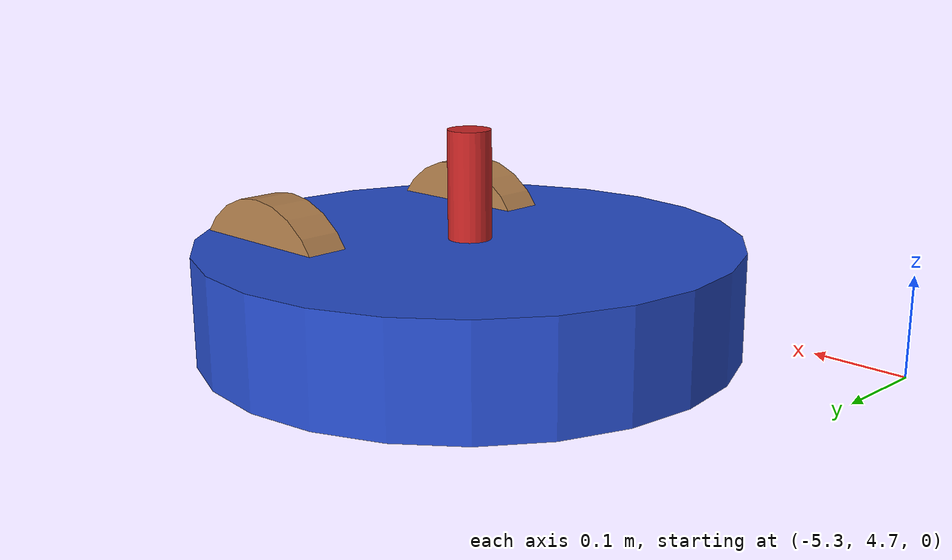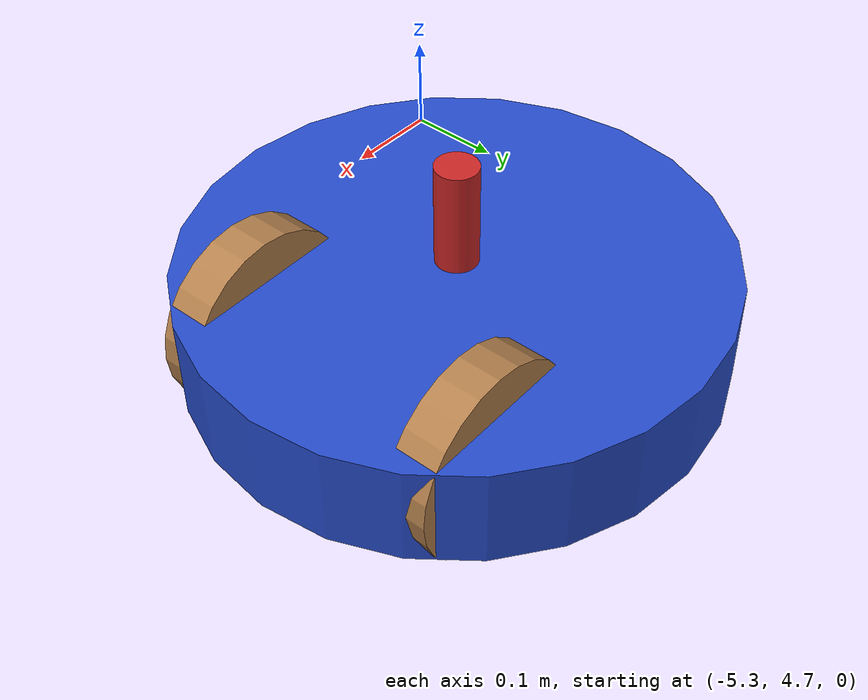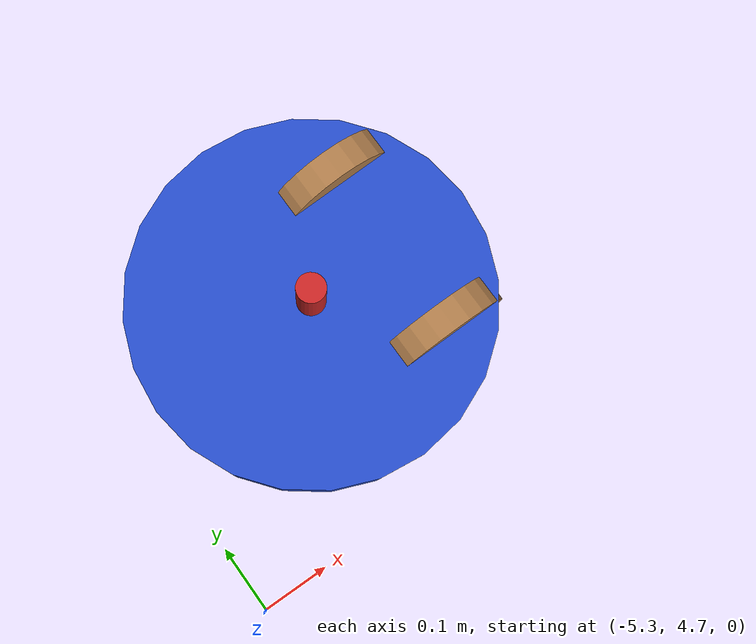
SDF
<sdf version="1.7">
 <world name="default">
  <model name="logger0">
   <link name="logger-chassis">
    <inertial>
     <pose>0.005952 0 -0.002381 0 -0 0</pose>
     <mass>2.1</mass>
     <inertia>
      <ixx>0.0332188</ixx>
      <ixy>0</ixy>
      <ixz>0.000595238</ixz>
      <iyy>0.0347069</iyy>
      <iyz>0</iyz>
      <izz>0.0640521</izz>
     </inertia>
    </inertial>
    <collision name="logger-chassis_collision">
     <geometry><cylinder><length>0.1</length><radius>0.25</radius></cylinder></geometry>
     <surface><friction><ode><mu>0.5</mu><mu2>0.5</mu2></ode></friction></surface>
    </collision>
    <collision name="logger-chassis_fixed_joint_lump__logger-caster_collision_1">
     <pose>0.125 0 -0.05 0 -0 0</pose>
     <geometry><sphere><radius>0.04</radius></sphere></geometry>
     <surface><friction><ode><mu>0</mu><mu2>0</mu2></ode></friction></surface>
    </collision>
    <visual name="logger-chassis_visual">
     <geometry><cylinder><length>0.1</length><radius>0.25</radius></cylinder></geometry>
     <material>
      <script><name>Gazebo/Blue</name><uri>file://media/materials/scripts/gazebo.material</uri></script>
     </material>
    </visual>
    <visual name="logger-chassis_fixed_joint_lump__logger-caster_visual_1">
     <pose>0.125 0 -0.05 0 -0 0</pose>
     <geometry><sphere><radius>0.04</radius></sphere></geometry>
     <material>
      <script><name>Gazebo/Grey</name><uri>file://media/materials/scripts/gazebo.material</uri></script>
     </material>
    </visual>
   </link>
   <joint name="logger-chassis2hat" type="revolute">
    <pose relative_to="logger-chassis">0 0 0.1 0 -0 0</pose>
    <parent>logger-chassis</parent>
    <child>logger-hat</child>
    <axis>
     <xyz>0 0 1</xyz>
     <limit><lower>-1e+16</lower><upper>1e+16</upper></limit>
     <dynamics><spring_reference>0</spring_reference><spring_stiffness>0</spring_stiffness></dynamics>
    </axis>
   </joint>
   <link name="logger-hat">
    <pose relative_to="logger-chassis2hat">0 0 0 0 -0 0</pose>
    <inertial>
     <pose>0 0 0.04 0 -0 0</pose>
     <mass>0.5</mass>
     <inertia>
      <ixx>0.000466667</ixx>
      <ixy>0</ixy>
      <ixz>0</ixz>
      <iyy>0.000466667</iyy>
      <iyz>0</iyz>
      <izz>0.0001</izz>
     </inertia>
    </inertial>
    <collision name="logger-hat_collision">
     <geometry><cylinder><length>0.1</length><radius>0.02</radius></cylinder></geometry>
     <surface><friction><ode><mu>0</mu><mu2>0</mu2></ode></friction></surface>
    </collision>
    <visual name="logger-hat_visual">
     <geometry><cylinder><length>0.1</length><radius>0.02</radius></cylinder></geometry>
     <material>
      <script><name>Gazebo/Red</name><uri>file://media/materials/scripts/gazebo.material</uri></script>
     </material>
    </visual>
   </link>
   <joint name="logger-chassis2left_wheel" type="revolute">
    <pose relative_to="logger-chassis">-0.125 -0.125 0 0 -0 0</pose>
    <parent>logger-chassis</parent>
    <child>logger-left_wheel</child>
    <axis>
     <xyz>0 1 0</xyz>
     <limit><lower>-1e+16</lower><upper>1e+16</upper></limit>
     <dynamics><spring_reference>0</spring_reference><spring_stiffness>0</spring_stiffness></dynamics>
    </axis>
   </joint>
   <link name="logger-left_wheel">
    <pose relative_to="logger-chassis2left_wheel">0 0 0 0 -0 0</pose>
    <inertial>
     <pose>0 0 0 1.5708 -0 0</pose>
     <mass>0.5</mass>
     <inertia>
      <ixx>0.00107917</ixx>
      <ixy>0</ixy>
      <ixz>0</ixz>
      <iyy>0.00107917</iyy>
      <iyz>0</iyz>
      <izz>0.002025</izz>
     </inertia>
    </inertial>
    <collision name="logger-left_wheel_collision">
     <pose>0 0 0 1.5708 -0 0</pose>
     <geometry><cylinder><length>0.04</length><radius>0.09</radius></cylinder></geometry>
     <surface><friction><ode><mu>0.99</mu><mu2>0.99</mu2></ode></friction></surface>
    </collision>
    <visual name="logger-left_wheel_visual">
     <pose>0 0 0 1.5708 -0 0</pose>
     <geometry><cylinder><length>0.04</length><radius>0.09</radius></cylinder></geometry>
     <material>
      <script><name>Gazebo/Wood</name><uri>file://media/materials/scripts/gazebo.material</uri></script>
     </material>
    </visual>
   </link>
   <joint name="logger-chassis2right_wheel" type="revolute">
    <pose relative_to="logger-chassis">-0.125 0.125 0 0 -0 0</pose>
    <parent>logger-chassis</parent>
    <child>logger-right_wheel</child>
    <axis>
     <xyz>0 1 0</xyz>
     <limit><lower>-1e+16</lower><upper>1e+16</upper></limit>
     <dynamics><spring_reference>0</spring_reference><spring_stiffness>0</spring_stiffness></dynamics>
    </axis>
   </joint>
   <link name="logger-right_wheel">
    <pose relative_to="logger-chassis2right_wheel">0 0 0 0 -0 0</pose>
    <inertial>
     <pose>0 0 0 1.5708 -0 0</pose>
     <mass>0.5</mass>
     <inertia>
      <ixx>0.00107917</ixx>
      <ixy>0</ixy>
      <ixz>0</ixz>
      <iyy>0.00107917</iyy>
      <iyz>0</iyz>
      <izz>0.002025</izz>
     </inertia>
    </inertial>
    <collision name="logger-right_wheel_collision">
     <pose>0 0 0 1.5708 -0 0</pose>
     <geometry><cylinder><length>0.04</length><radius>0.09</radius></cylinder></geometry>
     <surface><friction><ode><mu>0.99</mu><mu2>0.99</mu2></ode></friction></surface>
    </collision>
    <visual name="logger-right_wheel_visual">
     <pose>0 0 0 1.5708 -0 0</pose>
     <geometry><cylinder><length>0.04</length><radius>0.09</radius></cylinder></geometry>
     <material>
      <script><name>Gazebo/Wood</name><uri>file://media/materials/scripts/gazebo.material</uri></script>
     </material>
    </visual>
   </link>
   <static>0</static>
   <plugin name="differential_drive_controller" filename="libgazebo_ros_diff_drive.so">
    <legacyMode>0</legacyMode>
    <alwaysOn>1</alwaysOn>
    <updateRate>100</updateRate>
    <leftJoint>logger-chassis2left_wheel</leftJoint>
    <rightJoint>logger-chassis2right_wheel</rightJoint>
    <wheelSeparation>0.25</wheelSeparation>
    <wheelDiameter>0.18</wheelDiameter>
    <wheelTorque>1</wheelTorque>
    <commandTopic>logger0/cmd_vel</commandTopic>
    <odometryTopic>odom</odometryTopic>
    <odometryFrame>odom</odometryFrame>
    <robotBaseFrame>logger-chassis</robotBaseFrame>
    <robotNamespace>/</robotNamespace>
   </plugin>
   <pose>-5.01412 4.99923 0.089998 0 1.4e-05 -3.12398</pose>
  </model>
 </world>
</sdf>
